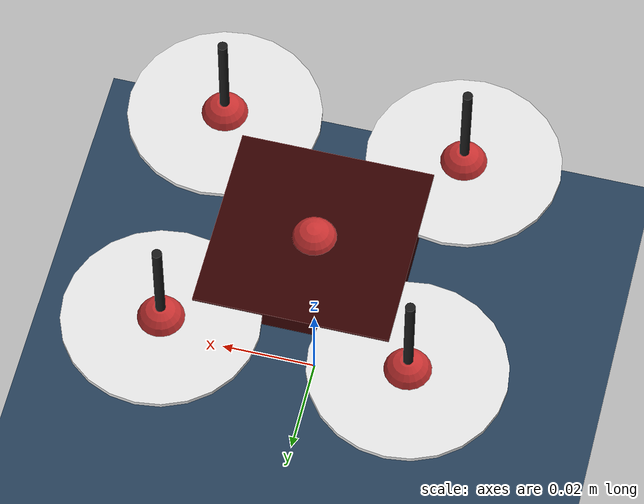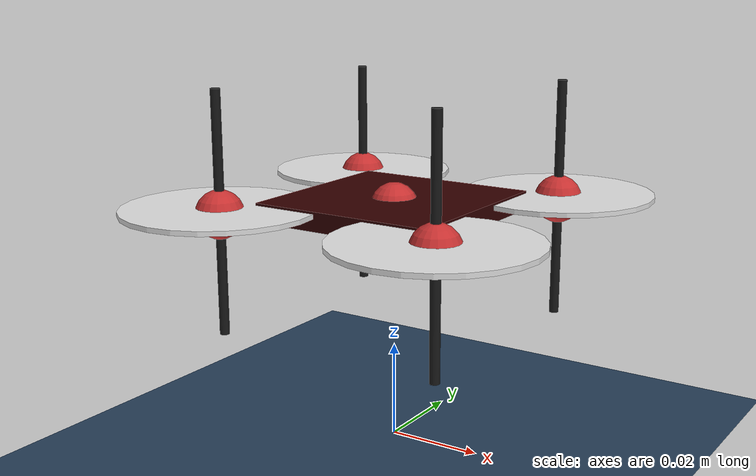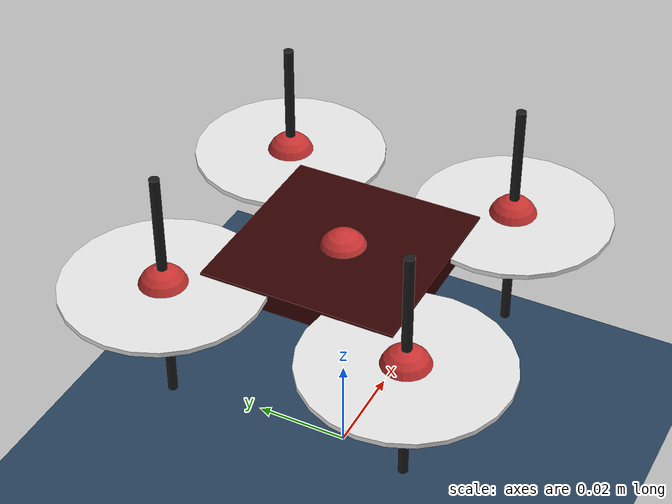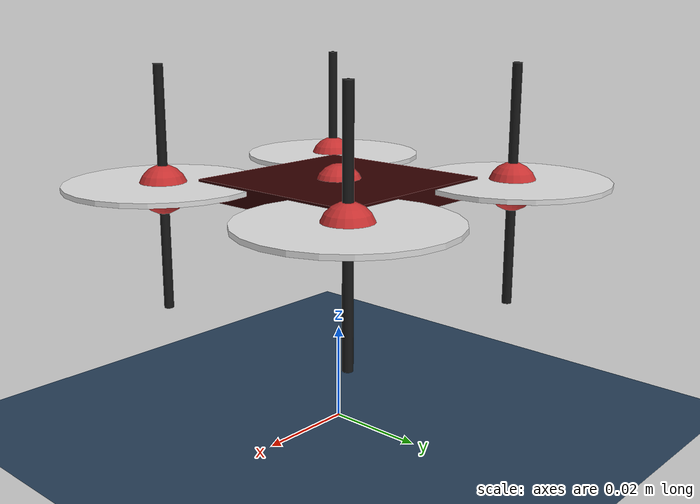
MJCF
<?xml version="1.0" ?>
<mujoco model="racing_quad">
    <compiler angle="radian" coordinate="local" inertiafromgeom="true"/>

    <option gravity="0 0 -9.81" density="1.293" viscosity="1.85e-5" integrator="RK4"/>

    <default>
        <joint damping="0.0005" armature="0.0005"/>
        <motor ctrlrange="0 1" ctrllimited="true"/>
        <site size="0.005" rgba="0.8 0.2 0.2 1"/>
    </default>

    <asset>
        <material name="body" rgba="0.2 0.0 0.0 1"/>
        <material name="arm" rgba="0.1 0.1 0.1 1"/>
        <material name="rotor" rgba="0.9 0.9 0.9 1"/>
        <texture name="grid" type="2d" builtin="checker" rgb1=".1 .2 .3" rgb2=".2 .3 .4" width="512" height="512"/>
        <material name="grid" texture="grid" texrepeat="1 1" texuniform="true" reflectance=".2"/>
    </asset>

    <worldbody>
        <light diffuse="0.6 0.6 0.6" pos="0 0 3" dir="0 0 -1"/>
        <camera name="fixed" pos="2 0 1" xyaxes="-1 0 0 0 1 0"/>
        <camera name="fpv" pos="0 0 0" xyaxes="0 -1 0 0 0 1"/>

        <!-- Ground plane with grid texture -->
        <geom name="floor" type="plane" material="grid" pos="0 0 0" size="5 5 0.1"/>

        <body name="quadcopter" pos="0 0 0.05">
            <joint name="root_x" type="slide" axis="1 0 0" pos="0 0 0"/>
            <joint name="root_y" type="slide" axis="0 1 0" pos="0 0 0"/>
            <joint name="root_z" type="slide" axis="0 0 1" pos="0 0 0"/>
            <joint name="root_rotx" type="hinge" axis="1 0 0" pos="0 0 0"/>
            <joint name="root_roty" type="hinge" axis="0 1 0" pos="0 0 0"/>
            <joint name="root_rotz" type="hinge" axis="0 0 1" pos="0 0 0"/>

            <!-- Central body - lightweight and compact -->
            <geom type="box" size="0.02 0.02 0.002" material="body" mass="0.015"/>

            <!-- Arms - shorter and lighter -->
            <body name="arm1" pos="0.025 0.025 0">
                <geom type="cylinder" size="0.001 0.025" pos="0 0 0" quat="0.924 0 0 0.383" material="arm" mass="0.0005"/>
                <site name="motor1" pos="0 0 0"/>
                <geom name="prop1" type="cylinder" size="0.02 0.0005" pos="0 0 0.001" material="rotor" mass="0.0005"/>
            </body>
            <body name="arm2" pos="-0.025 0.025 0">
                <geom type="cylinder" size="0.001 0.025" pos="0 0 0" quat="0.383 0 0 0.924" material="arm" mass="0.0005"/>
                <site name="motor2" pos="0 0 0"/>
                <geom name="prop2" type="cylinder" size="0.02 0.0005" pos="0 0 0.001" material="rotor" mass="0.0005"/>
            </body>
            <body name="arm3" pos="-0.025 -0.025 0">
                <geom type="cylinder" size="0.001 0.025" pos="0 0 0" quat="0.924 0 0 -0.383" material="arm" mass="0.0005"/>
                <site name="motor3" pos="0 0 0"/>
                <geom name="prop3" type="cylinder" size="0.02 0.0005" pos="0 0 0.001" material="rotor" mass="0.0005"/>
            </body>
            <body name="arm4" pos="0.025 -0.025 0">
                <geom type="cylinder" size="0.001 0.025" pos="0 0 0" quat="0.383 0 0 -0.924" material="arm" mass="0.0005"/>
                <site name="motor4" pos="0 0 0"/>
                <geom name="prop4" type="cylinder" size="0.02 0.0005" pos="0 0 0.001" material="rotor" mass="0.0005"/>
            </body>

            <!-- Sensors -->
            <site name="imu" pos="0 0 0"/>
            <camera name="fpv_cam" pos="0.02 0 0" xyaxes="0 -1 0 0 0 1" fovy="90"/>
        </body>
    </worldbody>

    <actuator>
        <!-- High-performance motors -->
        <motor name="motor1" site="motor1" gear="0.15 0 0 0 0 1"/>
        <motor name="motor2" site="motor2" gear="0.15 0 0 0 0 -1"/>
        <motor name="motor3" site="motor3" gear="0.15 0 0 0 0 1"/>
        <motor name="motor4" site="motor4" gear="0.15 0 0 0 0 -1"/>
    </actuator>

    <sensor>
        <accelerometer name="accelerometer" site="imu"/>
        <gyro name="gyro" site="imu"/>
        <velocimeter name="velocimeter" site="imu"/>
        <force name="force1" site="motor1"/>
        <force name="force2" site="motor2"/>
        <force name="force3" site="motor3"/>
        <force name="force4" site="motor4"/>
        <torque name="torque1" site="motor1"/>
        <torque name="torque2" site="motor2"/>
        <torque name="torque3" site="motor3"/>
        <torque name="torque4" site="motor4"/>
        <framequat name="orientation" objtype="site" objname="imu"/>
        <framepos name="position" objtype="site" objname="imu"/>
        <framelinvel name="linear_velocity" objtype="site" objname="imu"/>
        <frameangvel name="angular_velocity" objtype="site" objname="imu"/>
    </sensor>
</mujoco>
